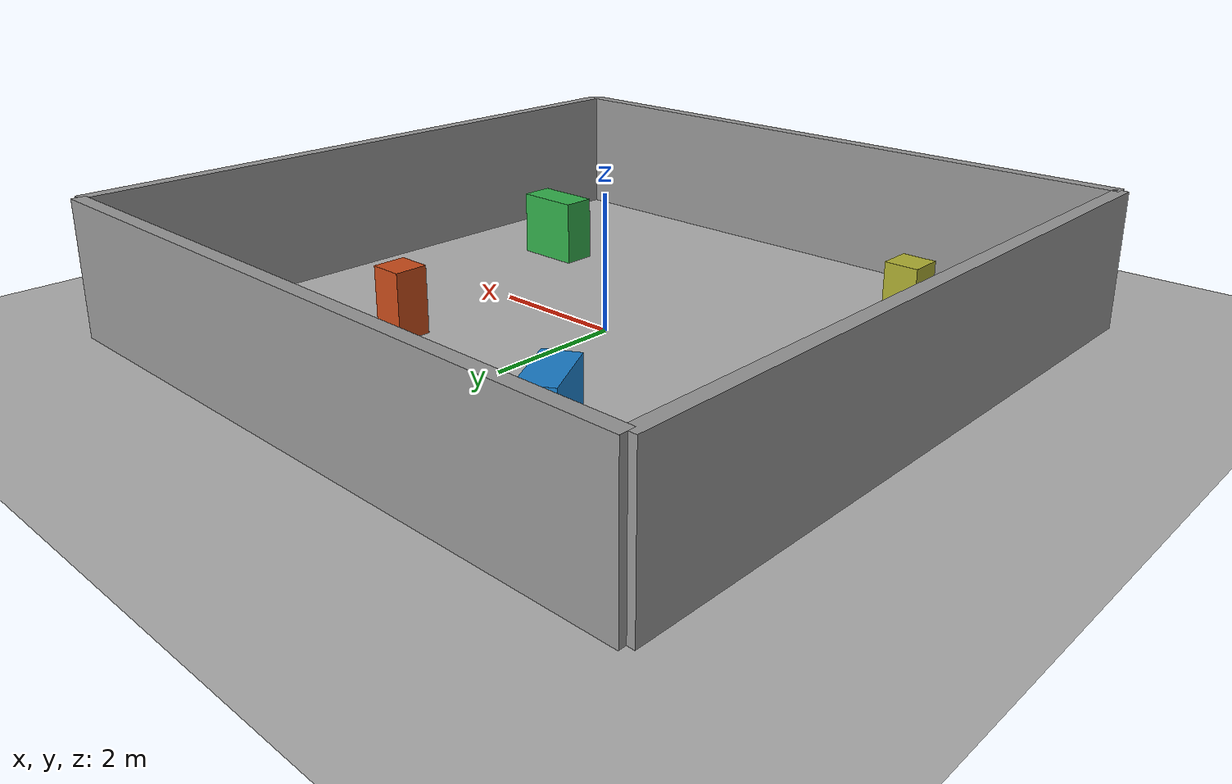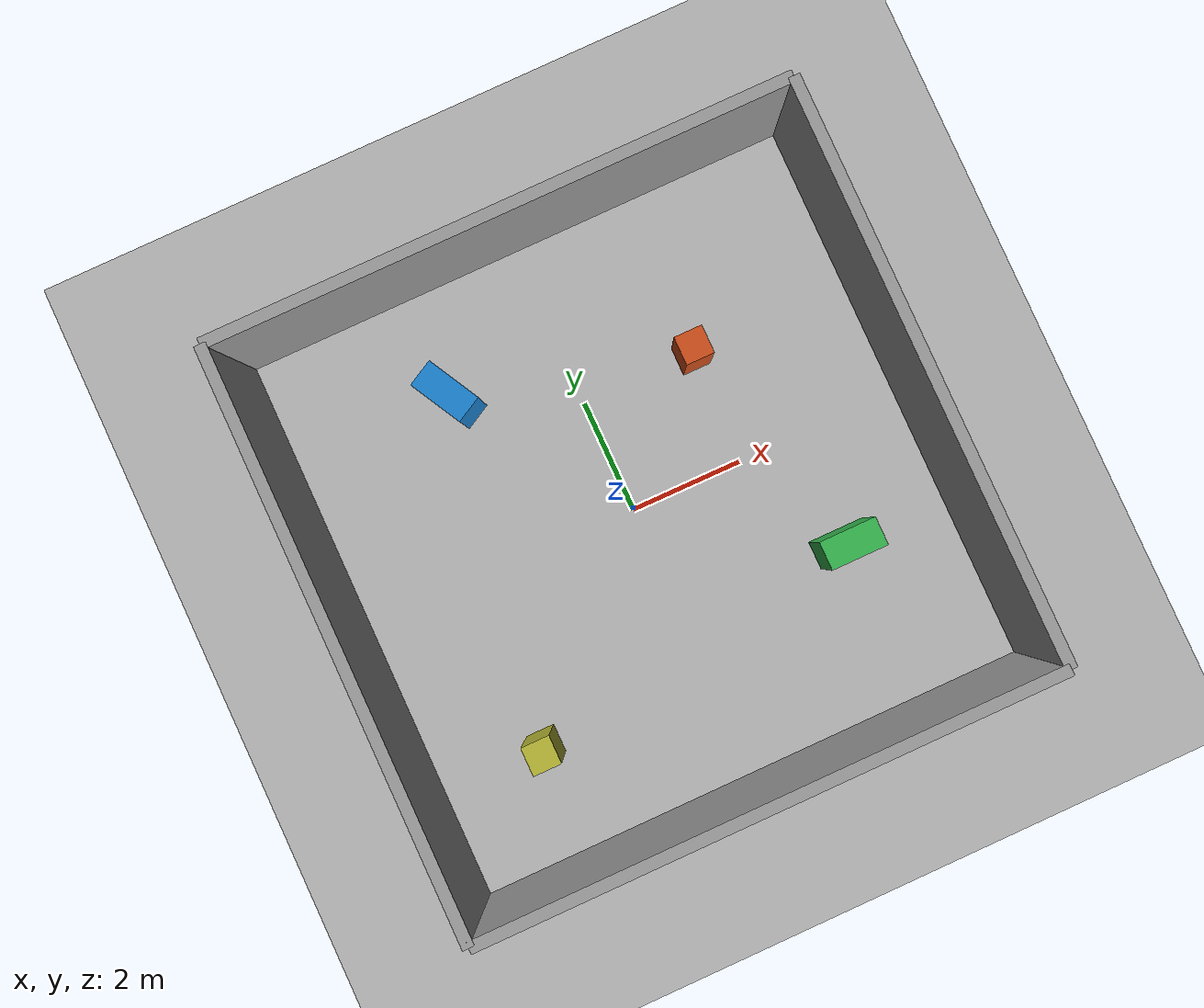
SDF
<?xml version="1.0" ?>
<sdf version="1.9">
  <world name="simple_room">

    <physics name="1ms" type="ignored">
      <max_step_size>0.001</max_step_size>
      <real_time_factor>1.0</real_time_factor>
    </physics>

    <!-- Required system plugins for Ignition Fortress -->
    <plugin filename="libignition-gazebo-physics-system.so"
            name="ignition::gazebo::systems::Physics"/>
    <plugin filename="libignition-gazebo-sensors-system.so"
            name="ignition::gazebo::systems::Sensors">
      <render_engine>ogre</render_engine>
    </plugin>

    <plugin filename="libignition-gazebo-scene-broadcaster-system.so"
            name="ignition::gazebo::systems::SceneBroadcaster"/>
    <plugin filename="libignition-gazebo-user-commands-system.so"
            name="ignition::gazebo::systems::UserCommands"/>

    <!-- Sun light -->
    <light type="directional" name="sun">
      <cast_shadows>true</cast_shadows>
      <pose>0 0 10 0 0 0</pose>
      <diffuse>0.8 0.8 0.8 1</diffuse>
      <specular>0.2 0.2 0.2 1</specular>
      <attenuation>
        <range>1000</range>
        <constant>0.9</constant>
        <linear>0.01</linear>
        <quadratic>0.001</quadratic>
      </attenuation>
      <direction>-0.5 0.1 -0.9</direction>
    </light>

    <!-- Ground plane -->
    <model name="ground_plane">
      <static>true</static>
      <link name="link">
        <collision name="collision">
          <geometry><plane><normal>0 0 1</normal><size>20 20</size></plane></geometry>
        </collision>
        <visual name="visual">
          <geometry><plane><normal>0 0 1</normal><size>20 20</size></plane></geometry>
          <material>
            <ambient>0.7 0.7 0.7 1</ambient>
            <diffuse>0.7 0.7 0.7 1</diffuse>
          </material>
        </visual>
      </link>
    </model>

    <!-- North wall (y=+5) -->
    <model name="wall_north">
      <static>true</static>
      <pose>0 5 1 0 0 0</pose>
      <link name="link">
        <collision name="collision">
          <geometry><box><size>10 0.2 2</size></box></geometry>
        </collision>
        <visual name="visual">
          <geometry><box><size>10 0.2 2</size></box></geometry>
          <material><ambient>0.6 0.6 0.6 1</ambient><diffuse>0.6 0.6 0.6 1</diffuse></material>
        </visual>
      </link>
    </model>

    <!-- South wall (y=-5) -->
    <model name="wall_south">
      <static>true</static>
      <pose>0 -5 1 0 0 0</pose>
      <link name="link">
        <collision name="collision">
          <geometry><box><size>10 0.2 2</size></box></geometry>
        </collision>
        <visual name="visual">
          <geometry><box><size>10 0.2 2</size></box></geometry>
          <material><ambient>0.6 0.6 0.6 1</ambient><diffuse>0.6 0.6 0.6 1</diffuse></material>
        </visual>
      </link>
    </model>

    <!-- East wall (x=+5) -->
    <model name="wall_east">
      <static>true</static>
      <pose>5 0 1 0 0 1.5707</pose>
      <link name="link">
        <collision name="collision">
          <geometry><box><size>10 0.2 2</size></box></geometry>
        </collision>
        <visual name="visual">
          <geometry><box><size>10 0.2 2</size></box></geometry>
          <material><ambient>0.6 0.6 0.6 1</ambient><diffuse>0.6 0.6 0.6 1</diffuse></material>
        </visual>
      </link>
    </model>

    <!-- West wall (x=-5) -->
    <model name="wall_west">
      <static>true</static>
      <pose>-5 0 1 0 0 1.5707</pose>
      <link name="link">
        <collision name="collision">
          <geometry><box><size>10 0.2 2</size></box></geometry>
        </collision>
        <visual name="visual">
          <geometry><box><size>10 0.2 2</size></box></geometry>
          <material><ambient>0.6 0.6 0.6 1</ambient><diffuse>0.6 0.6 0.6 1</diffuse></material>
        </visual>
      </link>
    </model>

    <!-- Obstacle boxes -->
    <model name="box1">
      <static>true</static>
      <pose>2 2 0.5 0 0 0</pose>
      <link name="link">
        <collision name="collision">
          <geometry><box><size>0.5 0.5 1</size></box></geometry>
        </collision>
        <visual name="visual">
          <geometry><box><size>0.5 0.5 1</size></box></geometry>
          <material><ambient>0.8 0.3 0.1 1</ambient><diffuse>0.8 0.3 0.1 1</diffuse></material>
        </visual>
      </link>
    </model>

    <model name="box2">
      <static>true</static>
      <pose>-2 3 0.5 0 0 0.5</pose>
      <link name="link">
        <collision name="collision">
          <geometry><box><size>0.5 1.0 1</size></box></geometry>
        </collision>
        <visual name="visual">
          <geometry><box><size>0.5 1.0 1</size></box></geometry>
          <material><ambient>0.1 0.5 0.8 1</ambient><diffuse>0.1 0.5 0.8 1</diffuse></material>
        </visual>
      </link>
    </model>

    <model name="box3">
      <static>true</static>
      <pose>3 -2 0.5 0 0 0</pose>
      <link name="link">
        <collision name="collision">
          <geometry><box><size>1.0 0.5 1</size></box></geometry>
        </collision>
        <visual name="visual">
          <geometry><box><size>1.0 0.5 1</size></box></geometry>
          <material><ambient>0.2 0.7 0.3 1</ambient><diffuse>0.2 0.7 0.3 1</diffuse></material>
        </visual>
      </link>
    </model>

    <model name="box4">
      <static>true</static>
      <pose>-3 -3 0.5 0 0 0</pose>
      <link name="link">
        <collision name="collision">
          <geometry><box><size>0.5 0.5 1</size></box></geometry>
        </collision>
        <visual name="visual">
          <geometry><box><size>0.5 0.5 1</size></box></geometry>
          <material><ambient>0.7 0.7 0.2 1</ambient><diffuse>0.7 0.7 0.2 1</diffuse></material>
        </visual>
      </link>
    </model>

  </world>
</sdf>
